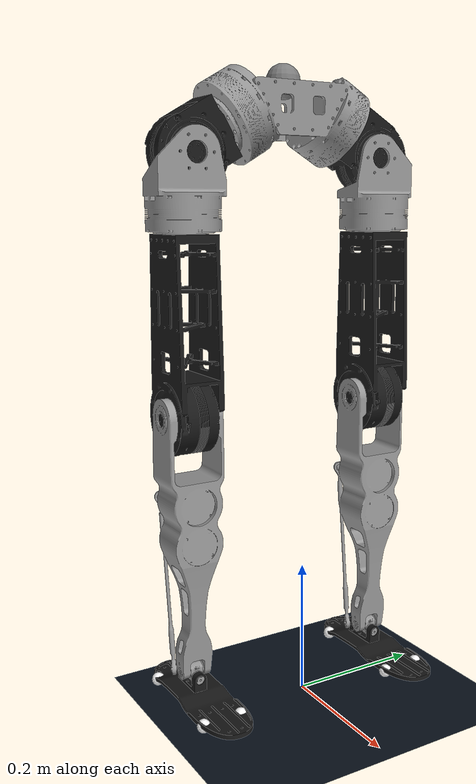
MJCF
<mujoco model="robot">
    <default>
        <default class="visual">
            <geom type="mesh" density="0" material="metal" contype="0" conaffinity="0" />
        </default>
    </default>

    <option iterations="3" ls_iterations="5" timestep="0.002" integrator="Euler">
        <flag eulerdamp="disable" />
    </option>

    <visual>
        <headlight diffuse="0.6 0.6 0.6" ambient="0.3 0.3 0.3" specular="0.1 0.1 0.1"/>
        <rgba haze="0.15 0.25 0.35 1"/>
        <global azimuth="180" elevation="-20"/>
        <quality shadowsize="4096"/>
    </visual>

    <worldbody>
        <geom name="floor" type="plane" size="5 5 0.1" pos="0 0 0" material="groundplane"/>
        <light pos="0 0 5" dir="0 0 -1"
            diffuse="0.8 0.8 0.8"
            specular="0.2 0.2 0.2"
            ambient="0.3 0.3 0.3"
            castshadow="true"
            attenuation="0.7 0.05 0"/>
        <light pos="3 3 4" dir="-1 -1 -1"
            diffuse="0.5 0.5 0.5"
            specular="0.1 0.1 0.1"
            ambient="0.2 0.2 0.2"/>
        <camera name="render_cam" pos="-0.073 3.732 1.098"
                xyaxes="-1.000 -0.020 -0.000 0.001 -0.026 1.000" />
        <body pos="0 0 0.91" name="pelvis">
            <freejoint />
            <geom class="visual" mesh="base_link" mass="0.0" material="silver"/>
            <inertial pos="-0.054 -0.0 -0.053" quat="0.707 -0.003 0.003 0.707"
                diaginertia="0.007 0.025 0.025" mass="3.112" />
            <geom type="sphere" size="0.025" pos="-0.054 0 0" mass="5"/>
            <site name="imu" type="box" pos="-0.05 0 0" size="0.01 0.01 0.01"/>
            <!-- Left leg -->
            <body pos="-0.054303 0.104943 -0.066909" name="fa_coupler">
                <joint name="j1" type="hinge" pos="0 0 0" axis="-0.0 -0.866025 0.5"
                    armature="0.0056" frictionloss="0.3" range="-30 30"/>
                <geom class="visual" mesh="link_1_1" mass="0.0" pos="0.054303 -0.104943 0.066909" material="gray"/>
                <inertial pos="-0.002 0.042 -0.031" quat="0.659 0.260 -0.658 -0.256" mass="0.972"
                    diaginertia="0.001 0.001 0.002" />
                <body pos="0.02845 0.047111 -0.035401" name="ar_coupler">
                    <joint name="j3" type="hinge" pos="0 0 0" axis="-1 0 0" armature="0.0056"
                        frictionloss="0.3" range="-18 18"/>
                    <inertial pos="-0.022 0.009 -0.070" quat="0.212 -0.343 0.914 0.036" mass="1.170" diaginertia="0.002 0.002 0.002" />
                    <geom class="visual" mesh="link_3_1" pos="0.025853 -0.152054 0.10231" material="silver"/>
                    <body pos="-0.022875 0.0075 -0.1089" name="thigh_link_cf">
                        <joint name="j5" type="hinge" pos="0 0 0" axis="0 0 1" armature="0.0056"
                            frictionloss="0.3" range="-9 9"/>
                        <inertial pos="0.000 -0.004 -0.198" quat="0.507 0.492 -0.494 0.506" mass="1.577" diaginertia="0.002 0.015 0.016" />
                        <geom class="visual" mesh="link_5_1" pos="0.048728 -0.159554 0.21121" material="gray"/>
                        <body pos="0.0 0.0273 -0.258" name="shin_link">
                            <site name="left_knee_site"/>
                            <joint name="j7" type="hinge" pos="0 0 0" axis="0 -1 0"
                                armature="0.0056" frictionloss="0.3" range="-90 0"/>
                            <inertial pos="-0.004 -0.027 -0.170" quat="0.012 0.710 -0.014 0.704" mass="2.385" diaginertia="0.002 0.024 0.025" />
                            <geom class="visual" mesh="link_7_1" pos="0.048728 -0.186854 0.46921" material="silver"/>
                            <body pos="0.0 -0.017 -0.391" name="axis_coupler">
                                <joint name="j10" type="hinge" pos="0 0 0" axis="0 -1 0"
                                    armature="0.0056" frictionloss="0.3" range="-30 30"/>
                                <inertial pos="-0.000 -0.010 -0.007" quat="0.707 0.707 0.006 -0.006" mass="0.103" diaginertia="0.0001 0.0001 0.0001" />
                                <geom class="visual" mesh="link_12_1"
                                    pos="0.048728 -0.169854 0.86021" material="silver"/>
                                <body pos="0.0121 -0.01 -0.01" name="foot">
                                    <joint name="j12" type="hinge" pos="0 0 0" axis="-1 0 0"
                                        armature="0.0056" frictionloss="0.3" range="-9 9"/>
                                    <site name="left_foot_site"/>
                                    <inertial pos="0.000 -0.000 -0.020" quat="0.999 0.000 0.033 -0.000" mass="0.246" diaginertia="0.00001 0.001 0.001" />
                                    <geom class="visual" mesh="link_10_1"
                                        pos="0.036628 -0.159854 0.87021" material="black"/>
                                    <!-- Left foot contact points -->
                                    <geom name="l_f_l" type="sphere" size="0.01"
                                        pos="0.08 0.03 -0.03" rgba="1 1 1 1" friction="1.0"
                                        mass="0.0" />
                                    <geom name="l_f_r" type="sphere" size="0.01"
                                        pos="0.08 -0.03 -0.03" rgba="1 1 1 1" friction="1.0"
                                        mass="0.0" />
                                    <geom name="l_b_l" type="sphere" size="0.01"
                                        pos="-0.08 0.03 -0.03" rgba="1 1 1 1" friction="1.0"
                                        mass="0.0" />
                                    <geom name="l_b_r" type="sphere" size="0.01"
                                        pos="-0.08 -0.03 -0.03" rgba="1 1 1 1" friction="1.0"
                                        mass="0.0" />
                                </body>
                            </body>
                        </body>
                    </body>
                </body>
            </body>
            <!-- Right leg -->
            <body pos="-0.054303 -0.104943 -0.066909" name="fa_coupler_mirror">
                <joint name="j2" type="hinge" pos="0 0 0" axis="-0.0 0.866025 0.5" armature="0.0056"
                    frictionloss="0.3" range="-30 30"/>
                <inertial pos="-0.003 -0.042 -0.031" quat="0.195 0.694 0.178 0.670" mass="0.972" diaginertia="0.001 0.001 0.002" />
                <geom class="visual" mesh="link_2_1" pos="0.054303 0.104943 0.066909" material="gray"/>
                <body pos="0.02625 -0.047111 -0.035401" name="ar_coupler_mirror">
                    <joint name="j4" type="hinge" pos="0 0 0" axis="1 0 0" armature="0.0056"
                        frictionloss="0.3" range="-18 18"/>
                    <inertial pos="-0.025 -0.009 -0.068" quat="0.053 0.954 -0.184 0.229" mass="1.170" diaginertia="0.002 0.002 0.002" />
                    <geom class="visual" mesh="link_4_1" pos="0.028053 0.152054 0.10231" material="silver"/>
                    <body pos="-0.027125 -0.0075 -0.1089" name="thigh_link_cf_mirror">
                        <joint name="j6" type="hinge" pos="0 0 0" axis="0 0 1" armature="0.0056"
                            frictionloss="0.3" range="-9 9"/>
                        <inertial pos="0.000 -0.004 -0.198" quat="0.507 0.492 -0.494 0.506" mass="1.577" diaginertia="0.002 0.015 0.016" />
                        <geom class="visual" mesh="link_6_1" pos="0.055178 0.159554 0.21121" material="gray"/>
                        <body pos="0.0 0.0271 -0.258" name="shin_link_mirror">
                            <site name="right_knee_site"/>
                            <joint name="j8" type="hinge" pos="0 0 0" axis="0 -1 0"
                                armature="0.0056" frictionloss="0.3" range="-90 0"/>
                            <inertial pos="-0.004 -0.027 -0.170" quat="0.012 0.710 -0.014 0.704" mass="2.385" diaginertia="0.002 0.024 0.025" />
                            <geom class="visual" mesh="link_8_1" pos="0.055178 0.132454 0.46921" material="silver"/>
                            <body pos="0.0 -0.017 -0.391" name="axis_coupler_mirror">
                                <joint name="j9" type="hinge" pos="0 0 0" axis="0 1 0"
                                    armature="0.0056" frictionloss="0.3" range="-30 30"/>
                                <inertial pos="-0.000 -0.010 -0.007" quat="0.707 0.707 0.006 -0.006" mass="0.103" diaginertia="0.0001 0.0001 0.0001" />
                                <geom class="visual" mesh="link_11_1"
                                    pos="0.055178 0.149454 0.86021" material="silver"/>
                                <body pos="0.0121 -0.01 -0.01" name="foot_mirror">
                                    <site name="right_foot_site"/>
                                    <joint name="j11" type="hinge" pos="0 0 0" axis="-1 0 0"
                                        armature="0.0056" frictionloss="0.3" range="-9 9"/>
                                    <inertial pos="0.007 0.0 -0.020" quat="0.999 0.000 0.033 -0.000" mass="0.246" diaginertia="0.00001 0.001 0.001" />
                                    <geom class="visual" mesh="link_9_1"
                                        pos="0.043078 0.159454 0.87021" material="black"/>
                                    <!-- Right foot contact points -->
                                    <geom name="r_f_l" type="sphere" size="0.01"
                                        pos="0.08 0.03 -0.03" rgba="1 1 1 1" friction="1.0"
                                        mass="0.0" />
                                    <geom name="r_f_r" type="sphere" size="0.01"
                                        pos="0.08 -0.03 -0.03" rgba="1 1 1 1" friction="1.0"
                                        mass="0.0" />
                                    <geom name="r_b_l" type="sphere" size="0.01"
                                        pos="-0.08 0.03 -0.03" rgba="1 1 1 1" friction="1.0"
                                        mass="0.0" />
                                    <geom name="r_b_r" type="sphere" size="0.01"
                                        pos="-0.08 -0.03 -0.03" rgba="1 1 1 1" friction="1.0"
                                        mass="0.0" />
                                </body>
                            </body>
                        </body>
                    </body>
                </body>
            </body>
        </body>
    </worldbody>

    <contact>
    </contact>
    <actuator>
        <position name="h1_left" joint="j1" kp="90" kv="8.5" forcelimited="true" forcerange="-90 90" />
        <position name="h2_left" joint="j3" kp="90" kv="8.5" forcelimited="true" forcerange="-50 50" />
        <position name="h3_left" joint="j5" kp="90" kv="8.5" forcelimited="true" forcerange="-50 50" />
        <position name="knee_left" joint="j7" kp="90" kv="8.5" forcelimited="true" forcerange="-50 50" />
        <position name="ankle_left_pitch" joint="j10" kp="50" kv="5.5" forcelimited="true" forcerange="-9 9" />
        <position name="ankle_left_roll" joint="j12" kp="50" kv="5.5" forcelimited="true" forcerange="-9 9" />

        <position name="h1_right" joint="j2" kp="90" kv="8.5" forcelimited="true" forcerange="-90 90" />
        <position name="h2_right" joint="j4" kp="90" kv="8.5" forcelimited="true" forcerange="-50 50" />
        <position name="h3_right" joint="j6" kp="90" kv="8.5" forcelimited="true" forcerange="-50 50" />
        <position name="knee_right" joint="j8" kp="90" kv="8.5" forcelimited="true" forcerange="-50 50" />
        <position name="ankle_right_pitch" joint="j9" kp="50" kv="5.5" forcelimited="true" forcerange="-9 9" />
        <position name="ankle_right_roll" joint="j11" kp="50" kv="5.5" forcelimited="true" forcerange="-9 9" />
    </actuator>
    <sensor>
        <gyro site="imu" name="gyro" />
        <accelerometer site="imu" name="accelerometer" />
        <framepos objtype="site" objname="imu" name="torso_pos" />
        <framezaxis objtype="site" objname="imu" name="gravity_vector"/>
        <framequat objtype="site" objname="imu" name="orientation" />
        <framelinvel objtype="site" objname="left_foot_site" name="left_foot_global_linvel" />
        <framezaxis objtype="site" objname="left_foot_site" name="left_foot_z_axis_vec" />
        <framepos objtype="site" objname="left_foot_site" name="left_foot_pos" />
        <framepos objtype="site" objname="left_knee_site" name="left_knee_pos" />
        <framelinvel objtype="site" objname="right_foot_site" name="right_foot_global_linvel" />
        <framezaxis objtype="site" objname="right_foot_site" name="right_foot_z_axis_vec" />
        <framepos objtype="site" objname="right_foot_site" name="right_foot_pos" />
        <framepos objtype="site" objname="right_knee_site" name="right_knee_pos" />
    </sensor>
    <asset>
        <material name="metal" rgba="0.3 0.3 0.3 1" />
        <mesh name="base_link" file="meshes/base_link.stl"
            scale="0.001 0.001 0.001" />
        <mesh name="link_1_1" file="meshes/link_1_1.stl"
            scale="0.001 0.001 0.001" />
        <mesh name="link_2_1" file="meshes/link_2_1.stl"
            scale="0.001 0.001 0.001" />
        <mesh name="link_3_1" file="meshes/link_3_1.stl"
            scale="0.001 0.001 0.001" />
        <mesh name="link_4_1" file="meshes/link_4_1.stl"
            scale="0.001 0.001 0.001" />
        <mesh name="link_5_1" file="meshes/link_5_1.stl"
            scale="0.001 0.001 0.001" />
        <mesh name="link_6_1" file="meshes/link_6_1.stl"
            scale="0.001 0.001 0.001" />
        <mesh name="link_7_1" file="meshes/link_7_1.stl"
            scale="0.001 0.001 0.001" />
        <mesh name="link_8_1" file="meshes/link_8_1.stl"
            scale="0.001 0.001 0.001" />
        <mesh name="link_9_1" file="meshes/link_9_1.stl"
            scale="0.001 0.001 0.001" />
        <mesh name="link_10_1" file="meshes/link_10_1.stl"
            scale="0.001 0.001 0.001" />
        <mesh name="link_11_1" file="meshes/link_11_1.stl"
            scale="0.001 0.001 0.001" />
        <mesh name="link_12_1" file="meshes/link_12_1.stl"
            scale="0.001 0.001 0.001" />
        <material name="silver"    rgba="0.6 0.6 0.6 1" specular="0.6" shininess="0.8"/>
        <material name="gray"  rgba="0.1 0.1 0.1 1" specular="0.4" shininess="0.4"/>
        <material name="black"  rgba="0.1 0.1 0.1 1"  specular="0.0" shininess="0.2"/>

        <texture name="skybox" type="skybox" builtin="gradient" rgb1="0.3 0.5 0.7" rgb2="0 0 0" width="512" height="3072"/>
        <texture name="groundplane_tex" type="2d" builtin="checker" mark="edge"
             rgb1="0.2 0.3 0.4" rgb2="0.1 0.2 0.3" markrgb="0.8 0.8 0.8"
             width="200" height="200"/>
        <material name="groundplane" texture="groundplane_tex" texuniform="true" texrepeat="4 4" reflectance="0.35" rgba="0.3 0.3 0.35 1"/>
    </asset>
</mujoco>
